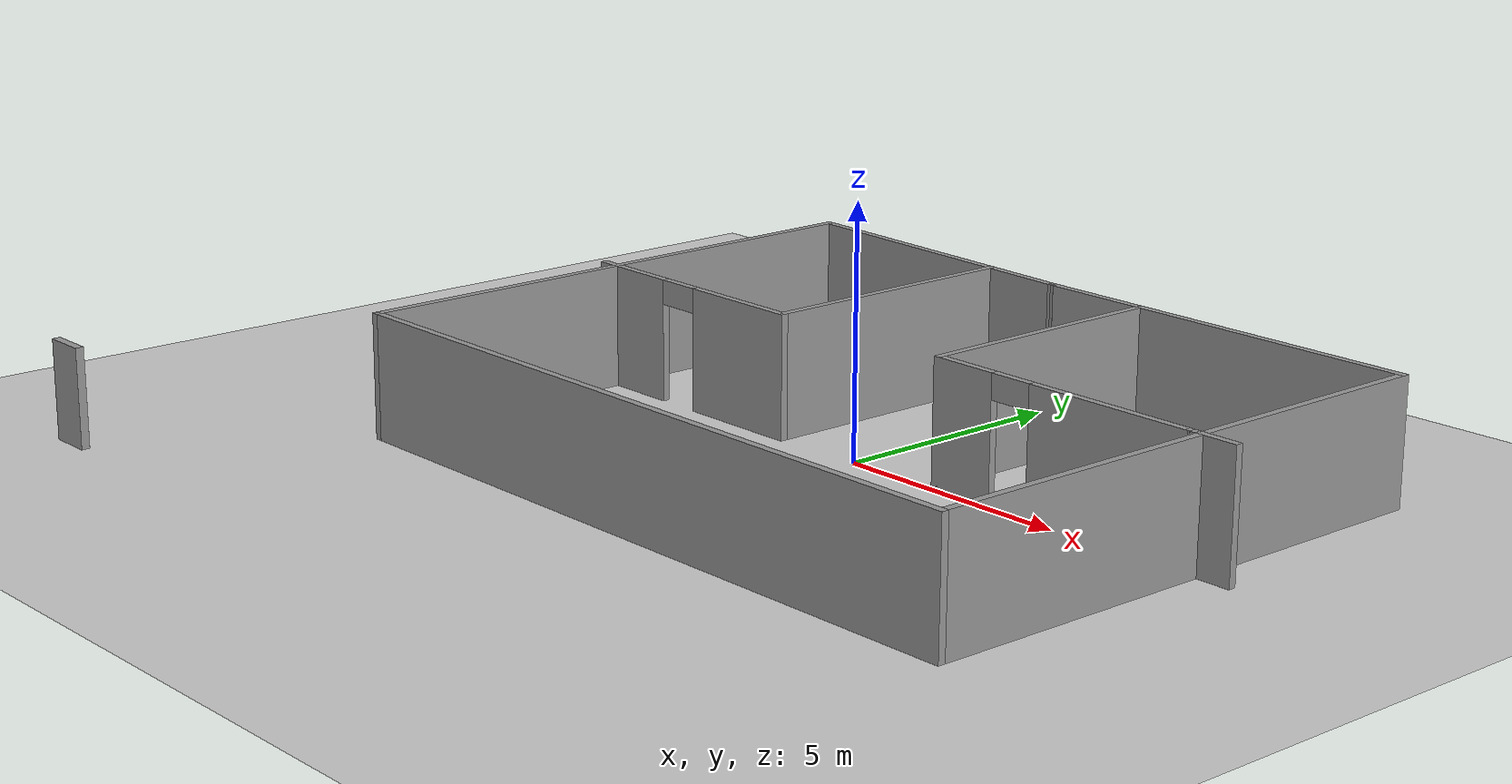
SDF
<sdf version="1.7">
 <world name="default">
  <light name="sun" type="directional">
   <pose>0 0 10 0 -0 0</pose>
   <diffuse>0.8 0.8 0.8 1</diffuse>
   <specular>0.2 0.2 0.2 1</specular>
   <attenuation>
    <range>1000</range>
    <constant>0.9</constant>
    <linear>0.01</linear>
    <quadratic>0.001</quadratic>
   </attenuation>
   <direction>-0.5 0.1 -0.9</direction>
   <spot><inner_angle>0</inner_angle><outer_angle>0</outer_angle><falloff>0</falloff></spot>
  </light>
  <model name="ground_plane">
   <static>1</static>
   <link name="link">
    <collision name="collision">
     <geometry><plane><normal>0 0 1</normal><size>100 100</size></plane></geometry>
     <surface>
      <contact><collide_bitmask>65535</collide_bitmask></contact>
      <friction><ode><mu>100</mu><mu2>50</mu2></ode></friction>
     </surface>
    </collision>
    <visual name="visual">
     <cast_shadows>0</cast_shadows>
     <geometry><plane><normal>0 0 1</normal><size>100 100</size></plane></geometry>
     <material>
      <script><uri>file://media/materials/scripts/gazebo.material</uri><name>Gazebo/Grey</name></script>
     </material>
    </visual>
   </link>
  </model>
  <gravity>0 0 -9.8</gravity>
  <magnetic_field>6e-06 2.3e-05 -4.2e-05</magnetic_field>
  <atmosphere type="adiabatic"/>
  <physics type="ode">
   <max_step_size>0.001</max_step_size>
   <real_time_factor>1</real_time_factor>
   <real_time_update_rate>1000</real_time_update_rate>
  </physics>
  <scene><ambient>0.4 0.4 0.4 1</ambient><background>0.7 0.7 0.7 1</background><shadows>1</shadows></scene>
  <spherical_coordinates>
   <surface_model>EARTH_WGS84</surface_model>
   <latitude_deg>0</latitude_deg>
   <longitude_deg>0</longitude_deg>
   <elevation>0</elevation>
   <heading_deg>0</heading_deg>
  </spherical_coordinates>
  <model name="building1">
   <link name="Door_3">
    <pose>-11.2514 -10.4541 0 0 -0 0</pose>
    <visual name="Door_3_Visual">
     <pose>0 0 1 0 -0 0</pose>
     <geometry><box><size>0.9 0.17 2</size></box></geometry>
     <material>
      <script><uri>file://media/materials/scripts/gazebo.material</uri><name>Gazebo/Grey</name></script>
      <shader type="pixel"/>
     </material>
    </visual>
    <collision name="Door_3_Collision">
     <pose>0 0 1 0 -0 0</pose>
     <geometry><box><size>0.9 0.17 2</size></box></geometry>
     <surface>
      <friction>
       <ode><mu>1</mu><mu2>1</mu2><fdir1>0 0 0</fdir1><slip1>0</slip1><slip2>0</slip2></ode>
       <torsional>
        <coefficient>1</coefficient>
        <patch_radius>0</patch_radius>
        <surface_radius>0</surface_radius>
        <use_patch_radius>1</use_patch_radius>
        <ode><slip>0</slip></ode>
       </torsional>
      </friction>
      <bounce><restitution_coefficient>0</restitution_coefficient><threshold>1e+06</threshold></bounce>
      <contact>
       <collide_without_contact>0</collide_without_contact>
       <collide_without_contact_bitmask>1</collide_without_contact_bitmask>
       <collide_bitmask>1</collide_bitmask>
       <ode>
        <soft_cfm>0</soft_cfm>
        <soft_erp>0.2</soft_erp>
        <kp>1e+13</kp>
        <kd>1</kd>
        <max_vel>0.01</max_vel>
        <min_depth>0</min_depth>
       </ode>
       <bullet>
        <split_impulse>1</split_impulse>
        <split_impulse_penetration_threshold>-0.01</split_impulse_penetration_threshold>
        <soft_cfm>0</soft_cfm>
        <soft_erp>0.2</soft_erp>
        <kp>1e+13</kp>
        <kd>1</kd>
       </bullet>
      </contact>
     </surface>
    </collision>
   </link>
   <link name="Wall_10">
    <pose>1.28703 2.87364 0 0 0 -1.5708</pose>
    <visual name="Wall_10_Visual">
     <pose>0 0 1.25 0 -0 0</pose>
     <geometry><box><size>5.5 0.15 2.5</size></box></geometry>
     <material>
      <script><uri>file://media/materials/scripts/gazebo.material</uri><name>Gazebo/Grey</name></script>
      <ambient>1 1 1 1</ambient>
      <shader type="pixel"/>
     </material>
     <meta><layer>0</layer></meta>
    </visual>
    <collision name="Wall_10_Collision">
     <pose>0 0 1.25 0 -0 0</pose>
     <geometry><box><size>5.5 0.15 2.5</size></box></geometry>
     <surface>
      <friction>
       <ode><mu>1</mu><mu2>1</mu2><fdir1>0 0 0</fdir1><slip1>0</slip1><slip2>0</slip2></ode>
       <torsional>
        <coefficient>1</coefficient>
        <patch_radius>0</patch_radius>
        <surface_radius>0</surface_radius>
        <use_patch_radius>1</use_patch_radius>
        <ode><slip>0</slip></ode>
       </torsional>
      </friction>
      <bounce><restitution_coefficient>0</restitution_coefficient><threshold>1e+06</threshold></bounce>
      <contact>
       <collide_without_contact>0</collide_without_contact>
       <collide_without_contact_bitmask>1</collide_without_contact_bitmask>
       <collide_bitmask>1</collide_bitmask>
       <ode>
        <soft_cfm>0</soft_cfm>
        <soft_erp>0.2</soft_erp>
        <kp>1e+13</kp>
        <kd>1</kd>
        <max_vel>0.01</max_vel>
        <min_depth>0</min_depth>
       </ode>
       <bullet>
        <split_impulse>1</split_impulse>
        <split_impulse_penetration_threshold>-0.01</split_impulse_penetration_threshold>
        <soft_cfm>0</soft_cfm>
        <soft_erp>0.2</soft_erp>
        <kp>1e+13</kp>
        <kd>1</kd>
       </bullet>
      </contact>
     </surface>
    </collision>
   </link>
   <link name="Wall_11">
    <pose>4.21203 0.198638 0 0 -0 0</pose>
    <visual name="Wall_11_Visual_0">
     <pose>-2.27953 0 1.25 0 -0 0</pose>
     <geometry><box><size>1.44094 0.15 2.5</size></box></geometry>
     <material>
      <script><uri>file://media/materials/scripts/gazebo.material</uri><name>Gazebo/Grey</name></script>
      <ambient>1 1 1 1</ambient>
      <shader type="pixel"/>
     </material>
     <meta><layer>0</layer></meta>
    </visual>
    <visual name="Wall_11_Visual_1">
     <pose>1.17047 0 1.25 0 -0 0</pose>
     <geometry><box><size>3.65905 0.15 2.5</size></box></geometry>
     <material>
      <script><uri>file://media/materials/scripts/gazebo.material</uri><name>Gazebo/Grey</name></script>
      <ambient>1 1 1 1</ambient>
      <shader type="pixel"/>
     </material>
     <meta><layer>0</layer></meta>
    </visual>
    <visual name="Wall_11_Visual_2">
     <pose>-1.10905 0 2.25 0 -0 0</pose>
     <geometry><box><size>0.9 0.15 0.5</size></box></geometry>
     <material>
      <script><uri>file://media/materials/scripts/gazebo.material</uri><name>Gazebo/Grey</name></script>
      <ambient>1 1 1 1</ambient>
      <shader type="pixel"/>
     </material>
     <meta><layer>0</layer></meta>
    </visual>
    <collision name="Wall_11_Collision_0">
     <pose>-2.27953 0 1.25 0 -0 0</pose>
     <geometry><box><size>1.44094 0.15 2.5</size></box></geometry>
     <surface>
      <friction>
       <ode><mu>1</mu><mu2>1</mu2><fdir1>0 0 0</fdir1><slip1>0</slip1><slip2>0</slip2></ode>
       <torsional>
        <coefficient>1</coefficient>
        <patch_radius>0</patch_radius>
        <surface_radius>0</surface_radius>
        <use_patch_radius>1</use_patch_radius>
        <ode><slip>0</slip></ode>
       </torsional>
      </friction>
      <bounce><restitution_coefficient>0</restitution_coefficient><threshold>1e+06</threshold></bounce>
      <contact>
       <collide_without_contact>0</collide_without_contact>
       <collide_without_contact_bitmask>1</collide_without_contact_bitmask>
       <collide_bitmask>1</collide_bitmask>
       <ode>
        <soft_cfm>0</soft_cfm>
        <soft_erp>0.2</soft_erp>
        <kp>1e+13</kp>
        <kd>1</kd>
        <max_vel>0.01</max_vel>
        <min_depth>0</min_depth>
       </ode>
       <bullet>
        <split_impulse>1</split_impulse>
        <split_impulse_penetration_threshold>-0.01</split_impulse_penetration_threshold>
        <soft_cfm>0</soft_cfm>
        <soft_erp>0.2</soft_erp>
        <kp>1e+13</kp>
        <kd>1</kd>
       </bullet>
      </contact>
     </surface>
    </collision>
    <collision name="Wall_11_Collision_1">
     <pose>1.17047 0 1.25 0 -0 0</pose>
     <geometry><box><size>3.65905 0.15 2.5</size></box></geometry>
     <surface>
      <friction>
       <ode><mu>1</mu><mu2>1</mu2><fdir1>0 0 0</fdir1><slip1>0</slip1><slip2>0</slip2></ode>
       <torsional>
        <coefficient>1</coefficient>
        <patch_radius>0</patch_radius>
        <surface_radius>0</surface_radius>
        <use_patch_radius>1</use_patch_radius>
        <ode><slip>0</slip></ode>
       </torsional>
      </friction>
      <bounce><restitution_coefficient>0</restitution_coefficient><threshold>1e+06</threshold></bounce>
      <contact>
       <collide_without_contact>0</collide_without_contact>
       <collide_without_contact_bitmask>1</collide_without_contact_bitmask>
       <collide_bitmask>1</collide_bitmask>
       <ode>
        <soft_cfm>0</soft_cfm>
        <soft_erp>0.2</soft_erp>
        <kp>1e+13</kp>
        <kd>1</kd>
        <max_vel>0.01</max_vel>
        <min_depth>0</min_depth>
       </ode>
       <bullet>
        <split_impulse>1</split_impulse>
        <split_impulse_penetration_threshold>-0.01</split_impulse_penetration_threshold>
        <soft_cfm>0</soft_cfm>
        <soft_erp>0.2</soft_erp>
        <kp>1e+13</kp>
        <kd>1</kd>
       </bullet>
      </contact>
     </surface>
    </collision>
    <collision name="Wall_11_Collision_2">
     <pose>-1.10905 0 2.25 0 -0 0</pose>
     <geometry><box><size>0.9 0.15 0.5</size></box></geometry>
     <surface>
      <friction>
       <ode><mu>1</mu><mu2>1</mu2><fdir1>0 0 0</fdir1><slip1>0</slip1><slip2>0</slip2></ode>
       <torsional>
        <coefficient>1</coefficient>
        <patch_radius>0</patch_radius>
        <surface_radius>0</surface_radius>
        <use_patch_radius>1</use_patch_radius>
        <ode><slip>0</slip></ode>
       </torsional>
      </friction>
      <bounce><restitution_coefficient>0</restitution_coefficient><threshold>1e+06</threshold></bounce>
      <contact>
       <collide_without_contact>0</collide_without_contact>
       <collide_without_contact_bitmask>1</collide_without_contact_bitmask>
       <collide_bitmask>1</collide_bitmask>
       <ode>
        <soft_cfm>0</soft_cfm>
        <soft_erp>0.2</soft_erp>
        <kp>1e+13</kp>
        <kd>1</kd>
        <max_vel>0.01</max_vel>
        <min_depth>0</min_depth>
       </ode>
       <bullet>
        <split_impulse>1</split_impulse>
        <split_impulse_penetration_threshold>-0.01</split_impulse_penetration_threshold>
        <soft_cfm>0</soft_cfm>
        <soft_erp>0.2</soft_erp>
        <kp>1e+13</kp>
        <kd>1</kd>
       </bullet>
      </contact>
     </surface>
    </collision>
   </link>
   <link name="Wall_12">
    <pose>7.18703 0.198638 0 0 -0 0</pose>
    <visual name="Wall_12_Visual">
     <pose>0 0 1.25 0 -0 0</pose>
     <geometry><box><size>0.25 0.15 2.5</size></box></geometry>
     <material>
      <script><uri>file://media/materials/scripts/gazebo.material</uri><name>Gazebo/Grey</name></script>
      <ambient>1 1 1 1</ambient>
      <shader type="pixel"/>
     </material>
     <meta><layer>0</layer></meta>
    </visual>
    <collision name="Wall_12_Collision">
     <pose>0 0 1.25 0 -0 0</pose>
     <geometry><box><size>0.25 0.15 2.5</size></box></geometry>
     <surface>
      <friction>
       <ode><mu>1</mu><mu2>1</mu2><fdir1>0 0 0</fdir1><slip1>0</slip1><slip2>0</slip2></ode>
       <torsional>
        <coefficient>1</coefficient>
        <patch_radius>0</patch_radius>
        <surface_radius>0</surface_radius>
        <use_patch_radius>1</use_patch_radius>
        <ode><slip>0</slip></ode>
       </torsional>
      </friction>
      <bounce><restitution_coefficient>0</restitution_coefficient><threshold>1e+06</threshold></bounce>
      <contact>
       <collide_without_contact>0</collide_without_contact>
       <collide_without_contact_bitmask>1</collide_without_contact_bitmask>
       <collide_bitmask>1</collide_bitmask>
       <ode>
        <soft_cfm>0</soft_cfm>
        <soft_erp>0.2</soft_erp>
        <kp>1e+13</kp>
        <kd>1</kd>
        <max_vel>0.01</max_vel>
        <min_depth>0</min_depth>
       </ode>
       <bullet>
        <split_impulse>1</split_impulse>
        <split_impulse_penetration_threshold>-0.01</split_impulse_penetration_threshold>
        <soft_cfm>0</soft_cfm>
        <soft_erp>0.2</soft_erp>
        <kp>1e+13</kp>
        <kd>1</kd>
       </bullet>
      </contact>
     </surface>
    </collision>
   </link>
   <link name="Wall_13">
    <pose>7.66203 0.198638 0 0 -0 0</pose>
    <visual name="Wall_13_Visual">
     <pose>0 0 1.25 0 -0 0</pose>
     <geometry><box><size>1 0.15 2.5</size></box></geometry>
     <material>
      <script><uri>file://media/materials/scripts/gazebo.material</uri><name>Gazebo/Grey</name></script>
      <ambient>1 1 1 1</ambient>
      <shader type="pixel"/>
     </material>
     <meta><layer>0</layer></meta>
    </visual>
    <collision name="Wall_13_Collision">
     <pose>0 0 1.25 0 -0 0</pose>
     <geometry><box><size>1 0.15 2.5</size></box></geometry>
     <surface>
      <friction>
       <ode><mu>1</mu><mu2>1</mu2><fdir1>0 0 0</fdir1><slip1>0</slip1><slip2>0</slip2></ode>
       <torsional>
        <coefficient>1</coefficient>
        <patch_radius>0</patch_radius>
        <surface_radius>0</surface_radius>
        <use_patch_radius>1</use_patch_radius>
        <ode><slip>0</slip></ode>
       </torsional>
      </friction>
      <bounce><restitution_coefficient>0</restitution_coefficient><threshold>1e+06</threshold></bounce>
      <contact>
       <collide_without_contact>0</collide_without_contact>
       <collide_without_contact_bitmask>1</collide_without_contact_bitmask>
       <collide_bitmask>1</collide_bitmask>
       <ode>
        <soft_cfm>0</soft_cfm>
        <soft_erp>0.2</soft_erp>
        <kp>1e+13</kp>
        <kd>1</kd>
        <max_vel>0.01</max_vel>
        <min_depth>0</min_depth>
       </ode>
       <bullet>
        <split_impulse>1</split_impulse>
        <split_impulse_penetration_threshold>-0.01</split_impulse_penetration_threshold>
        <soft_cfm>0</soft_cfm>
        <soft_erp>0.2</soft_erp>
        <kp>1e+13</kp>
        <kd>1</kd>
       </bullet>
      </contact>
     </surface>
    </collision>
   </link>
   <link name="Wall_15">
    <pose>-2.73703 2.80245 0 0 0 -1.5708</pose>
    <visual name="Wall_15_Visual">
     <pose>0 0 1.25 0 -0 0</pose>
     <geometry><box><size>5.75 0.15 2.5</size></box></geometry>
     <material>
      <script><uri>file://media/materials/scripts/gazebo.material</uri><name>Gazebo/Grey</name></script>
      <ambient>1 1 1 1</ambient>
      <shader type="pixel"/>
     </material>
     <meta><layer>0</layer></meta>
    </visual>
    <collision name="Wall_15_Collision">
     <pose>0 0 1.25 0 -0 0</pose>
     <geometry><box><size>5.75 0.15 2.5</size></box></geometry>
     <surface>
      <friction>
       <ode><mu>1</mu><mu2>1</mu2><fdir1>0 0 0</fdir1><slip1>0</slip1><slip2>0</slip2></ode>
       <torsional>
        <coefficient>1</coefficient>
        <patch_radius>0</patch_radius>
        <surface_radius>0</surface_radius>
        <use_patch_radius>1</use_patch_radius>
        <ode><slip>0</slip></ode>
       </torsional>
      </friction>
      <bounce><restitution_coefficient>0</restitution_coefficient><threshold>1e+06</threshold></bounce>
      <contact>
       <collide_without_contact>0</collide_without_contact>
       <collide_without_contact_bitmask>1</collide_without_contact_bitmask>
       <collide_bitmask>1</collide_bitmask>
       <ode>
        <soft_cfm>0</soft_cfm>
        <soft_erp>0.2</soft_erp>
        <kp>1e+13</kp>
        <kd>1</kd>
        <max_vel>0.01</max_vel>
        <min_depth>0</min_depth>
       </ode>
       <bullet>
        <split_impulse>1</split_impulse>
        <split_impulse_penetration_threshold>-0.01</split_impulse_penetration_threshold>
        <soft_cfm>0</soft_cfm>
        <soft_erp>0.2</soft_erp>
        <kp>1e+13</kp>
        <kd>1</kd>
       </bullet>
      </contact>
     </surface>
    </collision>
   </link>
   <link name="Wall_16">
    <pose>-5.41203 0.002445 0 0 -0 3.14159</pose>
    <visual name="Wall_16_Visual_0">
     <pose>-1.4375 0 1.25 0 -0 0</pose>
     <geometry><box><size>2.625 0.15 2.5</size></box></geometry>
     <material>
      <script><uri>file://media/materials/scripts/gazebo.material</uri><name>Gazebo/Grey</name></script>
      <ambient>1 1 1 1</ambient>
      <shader type="pixel"/>
     </material>
     <meta><layer>0</layer></meta>
    </visual>
    <visual name="Wall_16_Visual_1">
     <pose>1.7625 0 1.25 0 -0 0</pose>
     <geometry><box><size>1.975 0.15 2.5</size></box></geometry>
     <material>
      <script><uri>file://media/materials/scripts/gazebo.material</uri><name>Gazebo/Grey</name></script>
      <ambient>1 1 1 1</ambient>
      <shader type="pixel"/>
     </material>
     <meta><layer>0</layer></meta>
    </visual>
    <visual name="Wall_16_Visual_2">
     <pose>0.325 0 2.25 0 -0 0</pose>
     <geometry><box><size>0.9 0.15 0.5</size></box></geometry>
     <material>
      <script><uri>file://media/materials/scripts/gazebo.material</uri><name>Gazebo/Grey</name></script>
      <ambient>1 1 1 1</ambient>
      <shader type="pixel"/>
     </material>
     <meta><layer>0</layer></meta>
    </visual>
    <collision name="Wall_16_Collision_0">
     <pose>-1.4375 0 1.25 0 -0 0</pose>
     <geometry><box><size>2.625 0.15 2.5</size></box></geometry>
     <surface>
      <friction>
       <ode><mu>1</mu><mu2>1</mu2><fdir1>0 0 0</fdir1><slip1>0</slip1><slip2>0</slip2></ode>
       <torsional>
        <coefficient>1</coefficient>
        <patch_radius>0</patch_radius>
        <surface_radius>0</surface_radius>
        <use_patch_radius>1</use_patch_radius>
        <ode><slip>0</slip></ode>
       </torsional>
      </friction>
      <bounce><restitution_coefficient>0</restitution_coefficient><threshold>1e+06</threshold></bounce>
      <contact>
       <collide_without_contact>0</collide_without_contact>
       <collide_without_contact_bitmask>1</collide_without_contact_bitmask>
       <collide_bitmask>1</collide_bitmask>
       <ode>
        <soft_cfm>0</soft_cfm>
        <soft_erp>0.2</soft_erp>
        <kp>1e+13</kp>
        <kd>1</kd>
        <max_vel>0.01</max_vel>
        <min_depth>0</min_depth>
       </ode>
       <bullet>
        <split_impulse>1</split_impulse>
        <split_impulse_penetration_threshold>-0.01</split_impulse_penetration_threshold>
        <soft_cfm>0</soft_cfm>
        <soft_erp>0.2</soft_erp>
        <kp>1e+13</kp>
        <kd>1</kd>
       </bullet>
      </contact>
     </surface>
    </collision>
    <collision name="Wall_16_Collision_1">
     <pose>1.7625 0 1.25 0 -0 0</pose>
     <geometry><box><size>1.975 0.15 2.5</size></box></geometry>
     <surface>
      <friction>
       <ode><mu>1</mu><mu2>1</mu2><fdir1>0 0 0</fdir1><slip1>0</slip1><slip2>0</slip2></ode>
       <torsional>
        <coefficient>1</coefficient>
        <patch_radius>0</patch_radius>
        <surface_radius>0</surface_radius>
        <use_patch_radius>1</use_patch_radius>
        <ode><slip>0</slip></ode>
       </torsional>
      </friction>
      <bounce><restitution_coefficient>0</restitution_coefficient><threshold>1e+06</threshold></bounce>
      <contact>
       <collide_without_contact>0</collide_without_contact>
       <collide_without_contact_bitmask>1</collide_without_contact_bitmask>
       <collide_bitmask>1</collide_bitmask>
       <ode>
        <soft_cfm>0</soft_cfm>
        <soft_erp>0.2</soft_erp>
        <kp>1e+13</kp>
        <kd>1</kd>
        <max_vel>0.01</max_vel>
        <min_depth>0</min_depth>
       </ode>
       <bullet>
        <split_impulse>1</split_impulse>
        <split_impulse_penetration_threshold>-0.01</split_impulse_penetration_threshold>
        <soft_cfm>0</soft_cfm>
        <soft_erp>0.2</soft_erp>
        <kp>1e+13</kp>
        <kd>1</kd>
       </bullet>
      </contact>
     </surface>
    </collision>
    <collision name="Wall_16_Collision_2">
     <pose>0.325 0 2.25 0 -0 0</pose>
     <geometry><box><size>0.9 0.15 0.5</size></box></geometry>
     <surface>
      <friction>
       <ode><mu>1</mu><mu2>1</mu2><fdir1>0 0 0</fdir1><slip1>0</slip1><slip2>0</slip2></ode>
       <torsional>
        <coefficient>1</coefficient>
        <patch_radius>0</patch_radius>
        <surface_radius>0</surface_radius>
        <use_patch_radius>1</use_patch_radius>
        <ode><slip>0</slip></ode>
       </torsional>
      </friction>
      <bounce><restitution_coefficient>0</restitution_coefficient><threshold>1e+06</threshold></bounce>
      <contact>
       <collide_without_contact>0</collide_without_contact>
       <collide_without_contact_bitmask>1</collide_without_contact_bitmask>
       <collide_bitmask>1</collide_bitmask>
       <ode>
        <soft_cfm>0</soft_cfm>
        <soft_erp>0.2</soft_erp>
        <kp>1e+13</kp>
        <kd>1</kd>
        <max_vel>0.01</max_vel>
        <min_depth>0</min_depth>
       </ode>
       <bullet>
        <split_impulse>1</split_impulse>
        <split_impulse_penetration_threshold>-0.01</split_impulse_penetration_threshold>
        <soft_cfm>0</soft_cfm>
        <soft_erp>0.2</soft_erp>
        <kp>1e+13</kp>
        <kd>1</kd>
       </bullet>
      </contact>
     </surface>
    </collision>
   </link>
   <link name="Wall_4">
    <pose>3.20931 5.54864 0 0 -0 0</pose>
    <visual name="Wall_4_Visual">
     <pose>0 0 1.25 0 -0 0</pose>
     <geometry><box><size>8.5 0.15 2.5</size></box></geometry>
     <material>
      <script><uri>file://media/materials/scripts/gazebo.material</uri><name>Gazebo/Grey</name></script>
      <ambient>1 1 1 1</ambient>
      <shader type="pixel"/>
     </material>
     <meta><layer>0</layer></meta>
    </visual>
    <collision name="Wall_4_Collision">
     <pose>0 0 1.25 0 -0 0</pose>
     <geometry><box><size>8.5 0.15 2.5</size></box></geometry>
     <surface>
      <friction>
       <ode><mu>1</mu><mu2>1</mu2><fdir1>0 0 0</fdir1><slip1>0</slip1><slip2>0</slip2></ode>
       <torsional>
        <coefficient>1</coefficient>
        <patch_radius>0</patch_radius>
        <surface_radius>0</surface_radius>
        <use_patch_radius>1</use_patch_radius>
        <ode><slip>0</slip></ode>
       </torsional>
      </friction>
      <bounce><restitution_coefficient>0</restitution_coefficient><threshold>1e+06</threshold></bounce>
      <contact>
       <collide_without_contact>0</collide_without_contact>
       <collide_without_contact_bitmask>1</collide_without_contact_bitmask>
       <collide_bitmask>1</collide_bitmask>
       <ode>
        <soft_cfm>0</soft_cfm>
        <soft_erp>0.2</soft_erp>
        <kp>1e+13</kp>
        <kd>1</kd>
        <max_vel>0.01</max_vel>
        <min_depth>0</min_depth>
       </ode>
       <bullet>
        <split_impulse>1</split_impulse>
        <split_impulse_penetration_threshold>-0.01</split_impulse_penetration_threshold>
        <soft_cfm>0</soft_cfm>
        <soft_erp>0.2</soft_erp>
        <kp>1e+13</kp>
        <kd>1</kd>
       </bullet>
      </contact>
     </surface>
    </collision>
   </link>
   <link name="Wall_5">
    <pose>7.38431 -0.126362 0 0 0 -1.5708</pose>
    <visual name="Wall_5_Visual">
     <pose>0 0 1.25 0 -0 0</pose>
     <geometry><box><size>11.5 0.15 2.5</size></box></geometry>
     <material>
      <script><uri>file://media/materials/scripts/gazebo.material</uri><name>Gazebo/Grey</name></script>
      <ambient>1 1 1 1</ambient>
      <shader type="pixel"/>
     </material>
     <meta><layer>0</layer></meta>
    </visual>
    <collision name="Wall_5_Collision">
     <pose>0 0 1.25 0 -0 0</pose>
     <geometry><box><size>11.5 0.15 2.5</size></box></geometry>
     <surface>
      <friction>
       <ode><mu>1</mu><mu2>1</mu2><fdir1>0 0 0</fdir1><slip1>0</slip1><slip2>0</slip2></ode>
       <torsional>
        <coefficient>1</coefficient>
        <patch_radius>0</patch_radius>
        <surface_radius>0</surface_radius>
        <use_patch_radius>1</use_patch_radius>
        <ode><slip>0</slip></ode>
       </torsional>
      </friction>
      <bounce><restitution_coefficient>0</restitution_coefficient><threshold>1e+06</threshold></bounce>
      <contact>
       <collide_without_contact>0</collide_without_contact>
       <collide_without_contact_bitmask>1</collide_without_contact_bitmask>
       <collide_bitmask>1</collide_bitmask>
       <ode>
        <soft_cfm>0</soft_cfm>
        <soft_erp>0.2</soft_erp>
        <kp>1e+13</kp>
        <kd>1</kd>
        <max_vel>0.01</max_vel>
        <min_depth>0</min_depth>
       </ode>
       <bullet>
        <split_impulse>1</split_impulse>
        <split_impulse_penetration_threshold>-0.01</split_impulse_penetration_threshold>
        <soft_cfm>0</soft_cfm>
        <soft_erp>0.2</soft_erp>
        <kp>1e+13</kp>
        <kd>1</kd>
       </bullet>
      </contact>
     </surface>
    </collision>
   </link>
   <link name="Wall_6">
    <pose>-0.165693 -5.80136 0 0 -0 3.14159</pose>
    <visual name="Wall_6_Visual">
     <pose>0 0 1.25 0 -0 0</pose>
     <geometry><box><size>15.25 0.15 2.5</size></box></geometry>
     <material>
      <script><uri>file://media/materials/scripts/gazebo.material</uri><name>Gazebo/Grey</name></script>
      <ambient>1 1 1 1</ambient>
      <shader type="pixel"/>
     </material>
     <meta><layer>0</layer></meta>
    </visual>
    <collision name="Wall_6_Collision">
     <pose>0 0 1.25 0 -0 0</pose>
     <geometry><box><size>15.25 0.15 2.5</size></box></geometry>
     <surface>
      <friction>
       <ode><mu>1</mu><mu2>1</mu2><fdir1>0 0 0</fdir1><slip1>0</slip1><slip2>0</slip2></ode>
       <torsional>
        <coefficient>1</coefficient>
        <patch_radius>0</patch_radius>
        <surface_radius>0</surface_radius>
        <use_patch_radius>1</use_patch_radius>
        <ode><slip>0</slip></ode>
       </torsional>
      </friction>
      <bounce><restitution_coefficient>0</restitution_coefficient><threshold>1e+06</threshold></bounce>
      <contact>
       <collide_without_contact>0</collide_without_contact>
       <collide_without_contact_bitmask>1</collide_without_contact_bitmask>
       <collide_bitmask>1</collide_bitmask>
       <ode>
        <soft_cfm>0</soft_cfm>
        <soft_erp>0.2</soft_erp>
        <kp>1e+13</kp>
        <kd>1</kd>
        <max_vel>0.01</max_vel>
        <min_depth>0</min_depth>
       </ode>
       <bullet>
        <split_impulse>1</split_impulse>
        <split_impulse_penetration_threshold>-0.01</split_impulse_penetration_threshold>
        <soft_cfm>0</soft_cfm>
        <soft_erp>0.2</soft_erp>
        <kp>1e+13</kp>
        <kd>1</kd>
       </bullet>
      </contact>
     </surface>
    </collision>
   </link>
   <link name="Wall_7">
    <pose>-7.71569 -0.001362 0 0 -0 1.5708</pose>
    <visual name="Wall_7_Visual">
     <pose>0 0 1.25 0 -0 0</pose>
     <geometry><box><size>11.75 0.15 2.5</size></box></geometry>
     <material>
      <script><uri>file://media/materials/scripts/gazebo.material</uri><name>Gazebo/Grey</name></script>
      <ambient>1 1 1 1</ambient>
      <shader type="pixel"/>
     </material>
     <meta><layer>0</layer></meta>
    </visual>
    <collision name="Wall_7_Collision">
     <pose>0 0 1.25 0 -0 0</pose>
     <geometry><box><size>11.75 0.15 2.5</size></box></geometry>
     <surface>
      <friction>
       <ode><mu>1</mu><mu2>1</mu2><fdir1>0 0 0</fdir1><slip1>0</slip1><slip2>0</slip2></ode>
       <torsional>
        <coefficient>1</coefficient>
        <patch_radius>0</patch_radius>
        <surface_radius>0</surface_radius>
        <use_patch_radius>1</use_patch_radius>
        <ode><slip>0</slip></ode>
       </torsional>
      </friction>
      <bounce><restitution_coefficient>0</restitution_coefficient><threshold>1e+06</threshold></bounce>
      <contact>
       <collide_without_contact>0</collide_without_contact>
       <collide_without_contact_bitmask>1</collide_without_contact_bitmask>
       <collide_bitmask>1</collide_bitmask>
       <ode>
        <soft_cfm>0</soft_cfm>
        <soft_erp>0.2</soft_erp>
        <kp>1e+13</kp>
        <kd>1</kd>
        <max_vel>0.01</max_vel>
        <min_depth>0</min_depth>
       </ode>
       <bullet>
        <split_impulse>1</split_impulse>
        <split_impulse_penetration_threshold>-0.01</split_impulse_penetration_threshold>
        <soft_cfm>0</soft_cfm>
        <soft_erp>0.2</soft_erp>
        <kp>1e+13</kp>
        <kd>1</kd>
       </bullet>
      </contact>
     </surface>
    </collision>
   </link>
   <link name="Wall_8">
    <pose>-4.34069 5.67364 0 0 0 -0.03702</pose>
    <visual name="Wall_8_Visual">
     <pose>0 0 1.25 0 -0 0</pose>
     <geometry><box><size>6.90463 0.15 2.5</size></box></geometry>
     <material>
      <script><uri>file://media/materials/scripts/gazebo.material</uri><name>Gazebo/Grey</name></script>
      <ambient>1 1 1 1</ambient>
      <shader type="pixel"/>
     </material>
     <meta><layer>0</layer></meta>
    </visual>
    <collision name="Wall_8_Collision">
     <pose>0 0 1.25 0 -0 0</pose>
     <geometry><box><size>6.90463 0.15 2.5</size></box></geometry>
     <surface>
      <friction>
       <ode><mu>1</mu><mu2>1</mu2><fdir1>0 0 0</fdir1><slip1>0</slip1><slip2>0</slip2></ode>
       <torsional>
        <coefficient>1</coefficient>
        <patch_radius>0</patch_radius>
        <surface_radius>0</surface_radius>
        <use_patch_radius>1</use_patch_radius>
        <ode><slip>0</slip></ode>
       </torsional>
      </friction>
      <bounce><restitution_coefficient>0</restitution_coefficient><threshold>1e+06</threshold></bounce>
      <contact>
       <collide_without_contact>0</collide_without_contact>
       <collide_without_contact_bitmask>1</collide_without_contact_bitmask>
       <collide_bitmask>1</collide_bitmask>
       <ode>
        <soft_cfm>0</soft_cfm>
        <soft_erp>0.2</soft_erp>
        <kp>1e+13</kp>
        <kd>1</kd>
        <max_vel>0.01</max_vel>
        <min_depth>0</min_depth>
       </ode>
       <bullet>
        <split_impulse>1</split_impulse>
        <split_impulse_penetration_threshold>-0.01</split_impulse_penetration_threshold>
        <soft_cfm>0</soft_cfm>
        <soft_erp>0.2</soft_erp>
        <kp>1e+13</kp>
        <kd>1</kd>
       </bullet>
      </contact>
     </surface>
    </collision>
   </link>
   <static>1</static>
   <pose>0.767332 -0.066592 0 0 -0 0</pose>
  </model>
 </world>
</sdf>
